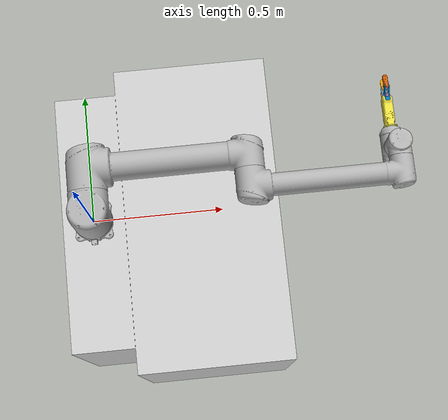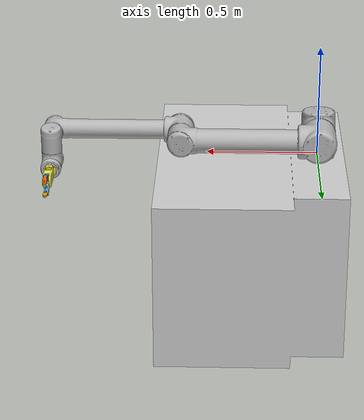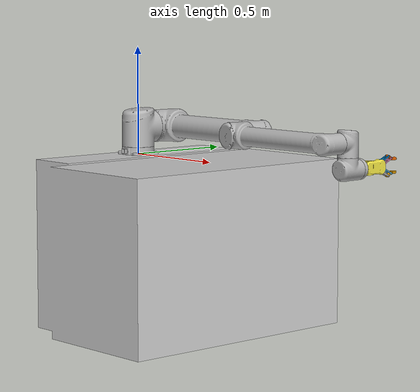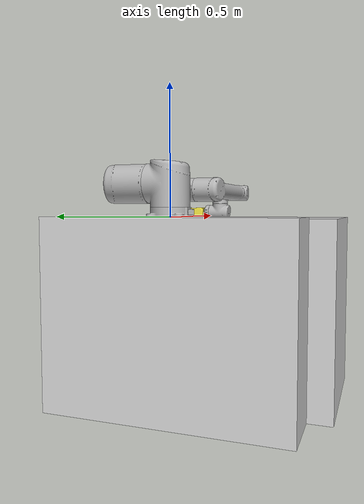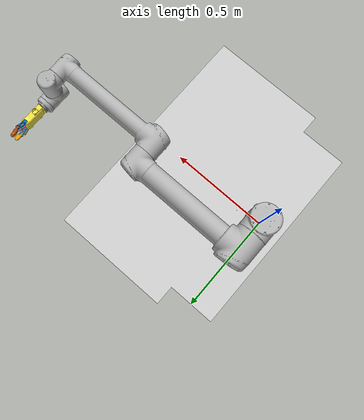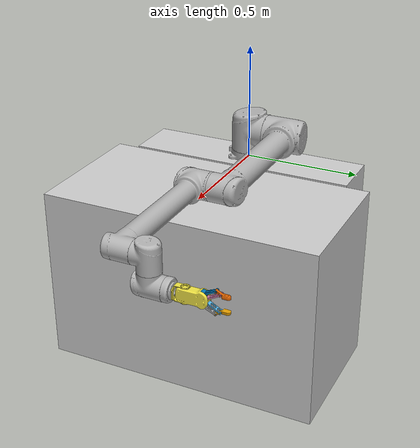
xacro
<?xml version="1.0"?>
<robot xmlns:xacro="http://wiki.ros.org/xacro" name="rg2myur10">
    <link name="world"/>
    <joint name ="world_link" type="fixed">
      <parent link="world"/>
      <child link="table"/>
      <origin xyz="0.42 0.0 -0.39" rpy="0.0 0.0 0.0"/>
    </joint>
      <material name="grey">
    <color rgba="0.8 0.8 0.8 1"/>
  </material>

  <link name="table">
    <visual>
      <geometry>
        <mesh filename="package://myur10_description/meshes/table/visual/table.dae"/>
      </geometry>
      <material name="grey"/>
    </visual>
    <collision>
      <geometry>
        <mesh filename="package://myur10_description/meshes/table/collision/table.obj"/>
      </geometry>
    </collision>
  </link>
    <xacro:arg name = "transmission_hw_interface" default = "hardware_interface/PositionJointInterface"/>

    <xacro:include filename = "$(find ur_description)/urdf/common.gazebo.xacro"/>

    <xacro:include filename = "$(find ur_description)/urdf/ur10.urdf.xacro"/>

    <xacro:include filename = "$(find rg2_description)/urdf/rg2.urdf.xacro"/>

    <xacro:ur10_robot prefix="" joint_limited="true" transmission_hw_interface= "$(arg transmission_hw_interface)"/>

    <joint name="ee_rg2_fixed_joint" type="fixed">
      <parent link="tool0"/>
        <child link="rg2_base_link"/>
      <origin xyz="0 0 0.004" rpy="${pi} ${-pi/2.0} 0"/>
    </joint>
    <link name="gripper_mid"/>
    <joint name="gripper_mid_joint" type="fixed">
      <parent link="tool0"/>
        <child link="gripper_mid"/>
      <origin xyz="0 0 0.2" rpy="0 0 0"/>
    </joint>
    <xacro:arg name="use_nominal_extrinsics" default="false" />
    <joint name="base_joint" type="fixed">
      <parent link="world"/>
      <child link="base_link"/>
      <origin xyz ="0.0 0 0.0" rpy="0.0 0.0 0.0"/>
    </joint>
</robot>

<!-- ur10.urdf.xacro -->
<robot xmlns:xacro="http://wiki.ros.org/xacro">

<!--
  Author: Kelsey Hawkins
  Contributers: Jimmy Da Silva, Ajit Krisshna N L, Muhammad Asif Rana
-->

  <xacro:include filename="$(find ur_description)/urdf/ur.transmission.xacro" />
  <xacro:include filename="$(find ur_description)/urdf/ur.gazebo.xacro" />

  <xacro:macro name="cylinder_inertial" params="radius length mass *origin">
    <inertial>
      <mass value="${mass}" />
      <xacro:insert_block name="origin" />
      <inertia ixx="${0.0833333 * mass * (3 * radius * radius + length * length)}" ixy="0.0" ixz="0.0"
        iyy="${0.0833333 * mass * (3 * radius * radius + length * length)}" iyz="0.0"
        izz="${0.5 * mass * radius * radius}" />
    </inertial>
  </xacro:macro>

  <xacro:macro name="ur10_robot" params="prefix joint_limited
    shoulder_pan_lower_limit:=${-pi}    shoulder_pan_upper_limit:=${pi}
    shoulder_lift_lower_limit:=${-pi}    shoulder_lift_upper_limit:=${pi}
    elbow_joint_lower_limit:=${-pi}    elbow_joint_upper_limit:=${pi}
    wrist_1_lower_limit:=${-pi}    wrist_1_upper_limit:=${pi}
    wrist_2_lower_limit:=${-pi}    wrist_2_upper_limit:=${pi}
    wrist_3_lower_limit:=${-pi}    wrist_3_upper_limit:=${pi}
    transmission_hw_interface:=hardware_interface/PositionJointInterface
    safety_limits:=false safety_pos_margin:=0.15
    safety_k_position:=20">

    <!-- Inertia parameters -->
    <xacro:property name="base_mass" value="4.0" />  <!-- This mass might be incorrect -->
    <xacro:property name="shoulder_mass" value="7.778" />
    <xacro:property name="upper_arm_mass" value="12.93" />
    <xacro:property name="forearm_mass" value="3.87" />
    <xacro:property name="wrist_1_mass" value="1.96" />
    <xacro:property name="wrist_2_mass" value="1.96" />
    <xacro:property name="wrist_3_mass" value="0.202" />

    <xacro:property name="shoulder_cog" value="0.00008 0.00244 -0.037" />
    <xacro:property name="upper_arm_cog" value="0.00001 0.15061 0.38757" />
    <xacro:property name="forearm_cog" value="-0.00012 0.06112 0.1984" />
    <xacro:property name="wrist_1_cog" value="-0.00021 -0.00112 0.02269" />
    <xacro:property name="wrist_2_cog" value="-0.00021 0.00112 0.002269" />
    <xacro:property name="wrist_3_cog" value="0 -0.001156 -0.00149" />

    <!-- Kinematic model -->
    <!-- Properties from urcontrol.conf -->
    <xacro:property name="d1" value="0.1273" />
    <xacro:property name="a2" value="-0.612" />
    <xacro:property name="a3" value="-0.5723" />
    <xacro:property name="d4" value="0.163941" />
    <xacro:property name="d5" value="0.1157" />
    <xacro:property name="d6" value="0.0922" />

    <!-- Arbitrary offsets for shoulder/elbow joints -->
    <xacro:property name="shoulder_offset" value="0.220941" />  <!-- measured from model -->
    <xacro:property name="elbow_offset" value="-0.1719" /> <!-- measured from model -->
    <xacro:property name="upper_arm_inertia_offset" value="0.045" />  <!-- measured from model -->

    <!-- link lengths used in model -->
    <xacro:property name="shoulder_height" value="${d1}" />
    <xacro:property name="upper_arm_length" value="${-a2}" />
    <xacro:property name="forearm_length" value="${-a3}" />
    <xacro:property name="wrist_1_length" value="${d4 - elbow_offset - shoulder_offset}" />
    <xacro:property name="wrist_2_length" value="${d5}" />
    <xacro:property name="wrist_3_length" value="${d6}" />

    <link name="${prefix}base_link" >
      <visual>
        <geometry>
          <mesh filename="package://ur_description/meshes/ur10/visual/base.dae"/>
        </geometry>
        <material name="LightGrey">
          <color rgba="0.7 0.7 0.7 1.0"/>
        </material>
      </visual>
      <collision>
        <geometry>
          <mesh filename="package://ur_description/meshes/ur10/collision/base.stl"/>
        </geometry>
      </collision>
      <xacro:cylinder_inertial radius="0.075" length="0.038" mass="${base_mass}">
        <origin xyz="0.0 0.0 0.0" rpy="0 0 0" />
      </xacro:cylinder_inertial>
    </link>

    <joint name="${prefix}shoulder_pan_joint" type="revolute">
      <parent link="${prefix}base_link" />
      <child link = "${prefix}shoulder_link" />
      <origin xyz="0.0 0.0 ${shoulder_height}" rpy="0.0 0.0 0.0" />
      <axis xyz="0 0 1" />
      <xacro:unless value="${joint_limited}">
        <limit lower="${-2.0 * pi}" upper="${2.0 * pi}" effort="330.0" velocity="2.16"/>
        <xacro:if value="${safety_limits}">
          <safety_controller soft_lower_limit="${-2.0 * pi + safety_pos_margin}" soft_upper_limit="${2.0 * pi - safety_pos_margin}" k_position="${safety_k_position}" k_velocity="0.0"/>
        </xacro:if>
      </xacro:unless>
      <xacro:if value="${joint_limited}">
        <limit lower="${shoulder_pan_lower_limit}" upper="${shoulder_pan_upper_limit}" effort="330.0" velocity="2.16"/>
        <xacro:if value="${safety_limits}">
          <safety_controller soft_lower_limit="${shoulder_pan_lower_limit + safety_pos_margin}" soft_upper_limit="${shoulder_pan_upper_limit - safety_pos_margin}" k_position="${safety_k_position}" k_velocity="0.0"/>
        </xacro:if>
      </xacro:if>
      <dynamics damping="0.0" friction="0.0"/>
    </joint>

    <link name="${prefix}shoulder_link">
      <visual>
        <geometry>
          <mesh filename="package://ur_description/meshes/ur10/visual/shoulder.dae"/>
        </geometry>
        <material name="LightGrey">
          <color rgba="0.7 0.7 0.7 1.0"/>
        </material>
      </visual>
      <collision>
        <geometry>
          <mesh filename="package://ur_description/meshes/ur10/collision/shoulder.stl"/>
        </geometry>
      </collision>
      <xacro:cylinder_inertial radius="0.075" length="0.178" mass="${shoulder_mass}">
        <origin xyz="0.0 0.0 0.0" rpy="0 0 0" />
      </xacro:cylinder_inertial>
    </link>

    <joint name="${prefix}shoulder_lift_joint" type="revolute">
      <parent link="${prefix}shoulder_link" />
      <child link = "${prefix}upper_arm_link" />
      <origin xyz="0.0 ${shoulder_offset} 0.0" rpy="0.0 ${pi / 2.0} 0.0" />
      <axis xyz="0 1 0" />
      <xacro:unless value="${joint_limited}">
        <limit lower="${-2.0 * pi}" upper="${2.0 * pi}" effort="330.0" velocity="2.16"/>
        <xacro:if value="${safety_limits}">
          <safety_controller soft_lower_limit="${-2.0 * pi + safety_pos_margin}" soft_upper_limit="${2.0 * pi - safety_pos_margin}" k_position="${safety_k_position}" k_velocity="0.0"/>
        </xacro:if>
      </xacro:unless>
      <xacro:if value="${joint_limited}">
        <limit lower="${shoulder_lift_lower_limit}" upper="${shoulder_lift_upper_limit}" effort="330.0" velocity="2.16"/>
        <xacro:if value="${safety_limits}">
          <safety_controller soft_lower_limit="${shoulder_lift_lower_limit + safety_pos_margin}" soft_upper_limit="${shoulder_lift_upper_limit - safety_pos_margin}" k_position="${safety_k_position}" k_velocity="0.0"/>
        </xacro:if>
      </xacro:if>
      <dynamics damping="0.0" friction="0.0"/>
    </joint>

    <link name="${prefix}upper_arm_link">
      <visual>
        <geometry>
          <mesh filename="package://ur_description/meshes/ur10/visual/upperarm.dae"/>
        </geometry>
        <material name="LightGrey">
          <color rgba="0.7 0.7 0.7 1.0"/>
        </material>
      </visual>
      <collision>
        <geometry>
          <mesh filename="package://ur_description/meshes/ur10/collision/upperarm.stl"/>
        </geometry>
      </collision>
      <xacro:cylinder_inertial radius="0.075" length="${-a2}" mass="${upper_arm_mass}">
        <origin xyz="0.0 ${-upper_arm_inertia_offset} ${-a2/2.0}" rpy="0 0 0" />
      </xacro:cylinder_inertial>
    </link>

    <joint name="${prefix}elbow_joint" type="revolute">
      <parent link="${prefix}upper_arm_link" />
      <child link = "${prefix}forearm_link" />
      <origin xyz="0.0 ${elbow_offset} ${upper_arm_length}" rpy="0.0 0.0 0.0" />
      <axis xyz="0 1 0" />
      <xacro:unless value="${joint_limited}">
        <limit lower="${-pi}" upper="${pi}" effort="150.0" velocity="3.15"/>
        <xacro:if value="${safety_limits}">
          <safety_controller soft_lower_limit="${-2.0 * pi + safety_pos_margin}" soft_upper_limit="${2.0 * pi - safety_pos_margin}" k_position="${safety_k_position}" k_velocity="0.0"/>
        </xacro:if>
      </xacro:unless>
      <xacro:if value="${joint_limited}">
        <limit lower="${elbow_joint_lower_limit}" upper="${elbow_joint_upper_limit}" effort="150.0" velocity="3.15"/>
        <xacro:if value="${safety_limits}">
          <safety_controller soft_lower_limit="${elbow_joint_lower_limit + safety_pos_margin}" soft_upper_limit="${elbow_joint_upper_limit - safety_pos_margin}" k_position="${safety_k_position}" k_velocity="0.0"/>
        </xacro:if>
      </xacro:if>
      <dynamics damping="0.0" friction="0.0"/>
    </joint>

    <link name="${prefix}forearm_link">
      <visual>
         <geometry>
          <mesh filename="package://ur_description/meshes/ur10/visual/forearm.dae"/>
        </geometry>
        <material name="LightGrey">
          <color rgba="0.7 0.7 0.7 1.0"/>
        </material>
      </visual>
      <collision>
        <geometry>
          <mesh filename="package://ur_description/meshes/ur10/collision/forearm.stl"/>
        </geometry>
      </collision>
      <xacro:cylinder_inertial radius="0.075" length="${-a3}" mass="${forearm_mass}">
        <origin xyz="0.0 0.0 ${-a3/2.0}" rpy="0 0 0" />
      </xacro:cylinder_inertial>
    </link>

    <joint name="${prefix}wrist_1_joint" type="revolute">
      <parent link="${prefix}forearm_link" />
      <child link = "${prefix}wrist_1_link" />
      <origin xyz="0.0 0.0 ${forearm_length}" rpy="0.0 ${pi / 2.0} 0.0" />
      <axis xyz="0 1 0" />
      <xacro:unless value="${joint_limited}">
        <limit lower="${-2.0 * pi}" upper="${2.0 * pi}" effort="54.0" velocity="3.2"/>
        <xacro:if value="${safety_limits}">
          <safety_controller soft_lower_limit="${-2.0 * pi + safety_pos_margin}" soft_upper_limit="${2.0 * pi - safety_pos_margin}" k_position="${safety_k_position}" k_velocity="0.0"/>
        </xacro:if>
      </xacro:unless>
      <xacro:if value="${joint_limited}">
        <limit lower="${wrist_1_lower_limit}" upper="${wrist_1_upper_limit}" effort="54.0" velocity="3.2"/>
        <xacro:if value="${safety_limits}">
          <safety_controller soft_lower_limit="${wrist_1_lower_limit + safety_pos_margin}" soft_upper_limit="${wrist_1_upper_limit - safety_pos_margin}" k_position="${safety_k_position}" k_velocity="0.0"/>
        </xacro:if>
      </xacro:if>
      <dynamics damping="0.0" friction="0.0"/>
    </joint>

    <link name="${prefix}wrist_1_link">
      <visual>
        <geometry>
          <mesh filename="package://ur_description/meshes/ur10/visual/wrist1.dae"/>
        </geometry>
        <material name="LightGrey">
          <color rgba="0.7 0.7 0.7 1.0"/>
        </material>
      </visual>
      <collision>
        <geometry>
          <mesh filename="package://ur_description/meshes/ur10/collision/wrist1.stl"/>
        </geometry>
      </collision>
      <xacro:cylinder_inertial radius="0.075" length="0.12" mass="${wrist_1_mass}">
        <origin xyz="0.0 ${wrist_1_length} 0.0" rpy="0 0 0" />
      </xacro:cylinder_inertial>
    </link>

    <joint name="${prefix}wrist_2_joint" type="revolute">
      <parent link="${prefix}wrist_1_link" />
      <child link = "${prefix}wrist_2_link" />
      <origin xyz="0.0 ${wrist_1_length} 0.0" rpy="0.0 0.0 0.0" />
      <axis xyz="0 0 1" />
      <xacro:unless value="${joint_limited}">
        <limit lower="${-2.0 * pi}" upper="${2.0 * pi}" effort="54.0" velocity="3.2"/>
        <xacro:if value="${safety_limits}">
          <safety_controller soft_lower_limit="${-2.0 * pi + safety_pos_margin}" soft_upper_limit="${2.0 * pi - safety_pos_margin}" k_position="${safety_k_position}" k_velocity="0.0"/>
        </xacro:if>
      </xacro:unless>
      <xacro:if value="${joint_limited}">
        <limit lower="${wrist_2_lower_limit}" upper="${wrist_2_upper_limit}" effort="54.0" velocity="3.2"/>
        <xacro:if value="${safety_limits}">
          <safety_controller soft_lower_limit="${wrist_2_lower_limit + safety_pos_margin}" soft_upper_limit="${wrist_2_upper_limit - safety_pos_margin}" k_position="${safety_k_position}" k_velocity="0.0"/>
        </xacro:if>
      </xacro:if>
      <dynamics damping="0.0" friction="0.0"/>
    </joint>

    <link name="${prefix}wrist_2_link">
      <visual>
        <geometry>
          <mesh filename="package://ur_description/meshes/ur10/visual/wrist2.dae"/>
        </geometry>
        <material name="LightGrey">
          <color rgba="0.7 0.7 0.7 1.0"/>
        </material>
      </visual>
      <collision>
        <geometry>
          <mesh filename="package://ur_description/meshes/ur10/collision/wrist2.stl"/>
        </geometry>
      </collision>
      <xacro:cylinder_inertial radius="0.075" length="0.12" mass="${wrist_2_mass}">
        <origin xyz="0.0 0.0 ${wrist_2_length}" rpy="0 0 0" />
      </xacro:cylinder_inertial>
    </link>

    <joint name="${prefix}wrist_3_joint" type="revolute">
      <parent link="${prefix}wrist_2_link" />
      <child link = "${prefix}wrist_3_link" />
      <origin xyz="0.0 0.0 ${wrist_2_length}" rpy="0.0 1.5707 0.0" />
      <axis xyz="0 1 0" />
      <xacro:unless value="${joint_limited}">
        <limit lower="${-2.0 * pi}" upper="${2.0 * pi}" effort="54.0" velocity="3.2"/>
        <xacro:if value="${safety_limits}">
          <safety_controller soft_lower_limit="${-2.0 * pi + safety_pos_margin}" soft_upper_limit="${2.0 * pi - safety_pos_margin}" k_position="${safety_k_position}" k_velocity="0.0"/>
        </xacro:if>
      </xacro:unless>
      <xacro:if value="${joint_limited}">
        <limit lower="${wrist_3_lower_limit}" upper="${wrist_3_upper_limit}" effort="54.0" velocity="3.2"/>
        <xacro:if value="${safety_limits}">
          <safety_controller soft_lower_limit="${wrist_3_lower_limit + safety_pos_margin}" soft_upper_limit="${wrist_3_upper_limit - safety_pos_margin}" k_position="${safety_k_position}" k_velocity="0.0"/>
        </xacro:if>
      </xacro:if>
      <dynamics damping="0.0" friction="0.0"/>
    </joint>

    <link name="${prefix}wrist_3_link">
      <visual>
        <geometry>
          <mesh filename="package://ur_description/meshes/ur10/visual/wrist3.dae"/>
        </geometry>
        <material name="LightGrey">
          <color rgba="0.7 0.7 0.7 1.0"/>
        </material>
      </visual>
      <collision>
        <geometry>
          <mesh filename="package://ur_description/meshes/ur10/collision/wrist3.stl"/>
        </geometry>
      </collision>
      <xacro:cylinder_inertial radius="0.045" length="0.0305" mass="${wrist_3_mass}">
        <origin xyz="0.0 ${wrist_3_length - 0.0305/2} 0.0" rpy="${pi/2} 0 0" />
      </xacro:cylinder_inertial>
    </link>

    <joint name="${prefix}ee_fixed_joint" type="fixed">
      <parent link="${prefix}wrist_3_link" />
      <child link = "${prefix}ee_link" />
      <origin xyz="0.0 ${wrist_3_length} 0.0" rpy="0.0 0.0 ${pi/2.0}" />
    </joint>

    <link name="${prefix}ee_link">
      <collision>
        <geometry>
          <box size="0.01 0.01 0.01"/>
        </geometry>
        <origin rpy="0 0 0" xyz="-0.01 0 0"/>
      </collision>
    </link>

    <xacro:ur_arm_transmission prefix="${prefix}" hw_interface="${transmission_hw_interface}" />
    <xacro:ur_arm_gazebo prefix="${prefix}" />

    <!-- ROS base_link to UR 'Base' Coordinates transform -->
    <link name="${prefix}base"/>
    <joint name="${prefix}base_link-base_fixed_joint" type="fixed">
      <!-- NOTE: this rotation is only needed as long as base_link itself is
                 not corrected wrt the real robot (ie: rotated over 180
                 degrees)
      -->
      <origin xyz="0 0 0" rpy="0 0 ${-pi}"/>
      <parent link="${prefix}base_link"/>
      <child link="${prefix}base"/>
    </joint>

    <!-- Frame coincident with all-zeros TCP on UR controller -->
    <link name="${prefix}tool0"/>
    <joint name="${prefix}wrist_3_link-tool0_fixed_joint" type="fixed">
      <origin xyz="0 ${wrist_3_length} 0" rpy="${pi/-2.0} ${pi/2.0} 0"/>
      <parent link="${prefix}wrist_3_link"/>
      <child link="${prefix}tool0"/>
    </joint>

  </xacro:macro>
</robot>

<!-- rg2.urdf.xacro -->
<robot name="rg2" xmlns:xacro="http://ros.org/wiki/xacro">

    <xacro:property name="pi" value="3.141592654" />
    <xacro:include filename="$(find rg2_description)/urdf/rg2.transmissions.xacro" />

    <link name="rg2_base_link">
    </link>
    <joint name="base_fixed_joint" type="fixed">
        <parent link="rg2_base_link"/>
        <child link="hand_link"/>
        <origin xyz="0.000 0.000 0.000" rpy="0 0 0"/>
    </joint>
    <link name="hand_link">
        <collision>
            <origin xyz="0.00 0.00 0.00" rpy="0.00 0.00 0.00"/>
            <geometry>
                <mesh filename="package://rg2_description/meshes/collision/RG2_Hand_col.STL"/>
            </geometry>
        </collision>
        <visual>
            <origin xyz="0.00 0.00 0.00" rpy="0.00 0.00 0.00"/>
            <geometry>
                <mesh filename="package://rg2_description/meshes/visual/RG2_Hand_vis.STL"/>
            </geometry>
        </visual>
        <inertial>
            <origin xyz="0.061902 0.000129 -0.000005" rpy="0.00 0.00 0.00"/>
            <mass value="1.684558"/>
            <inertia ixx="0.000862" ixy="0.000000" ixz="0.000000"
                     iyy="0.002401" iyz="-0.000001"
                     izz="0.002620" />
        </inertial>
    </link>
    <!-- Jari Kiri -->
    <joint name="gripper_joint" type="revolute">
        <parent link="hand_link"/>
        <child link="l_moment_arm_link"/>
        <origin xyz="0.105 0.017 0.010" rpy="0 0 0"/>
        <axis xyz="0 0 1"/>
        <limit velocity="3.14" effort="10.6" lower="${-0.45}" upper="${pi*0.5}" />
        <dynamics damping="0.1" friction="0.0" />
        <implicitSpringDamper>True</implicitSpringDamper>
    </joint>
    <xacro:insert_transmission name="gripper_joint" />
    <link name="l_moment_arm_link">
        <collision>
            <origin xyz="0.00 0.00 0.00" rpy="0.00 0.00 0.00"/>
            <geometry>
                <mesh filename="package://rg2_description/meshes/collision/RG2_LeftMomentArm_col.STL"/>
            </geometry>
        </collision>
        <visual>
            <origin xyz="0.00 0.00 0.00" rpy="0.00 0.00 0.00"/>
            <geometry>
                <mesh filename="package://rg2_description/meshes/visual/RG2_LeftMomentArm_vis.STL"/>
            </geometry>
        </visual>
        <inertial>
            <origin xyz="0.017004 0.006397 -0.010300" rpy="0.00 0.00 0.00"/>
            <mass value="0.160209"/>
            <inertia ixx="0.000023" ixy="0.000019" ixz="0.000000"
                     iyy="0.000072" iyz="0.000000"
                     izz="0.000083" />
        </inertial>
    </link>
    <joint name="l_finger_2_joint" type="revolute">
        <parent link="l_moment_arm_link"/>
        <child link="l_finger_link"/>
        <origin xyz="0.049 0.026 0.000" rpy="0 0 0"/>
        <axis xyz="0 0 1"/>
        <limit velocity="3.14" effort="10.6" lower="${-pi*0.5}" upper="${pi*0.5}" />
        <mimic joint="gripper_joint" multiplier="-1"/>
        <dynamics damping="0.1" friction="0.0" />
        <implicitSpringDamper>True</implicitSpringDamper>
    </joint>
    <link name="l_finger_link">
        <collision>
            <origin xyz="0.00 0.00 0.00" rpy="0.00 0.00 0.00"/>
            <geometry>
                <mesh filename="package://rg2_description/meshes/collision/RG2_LeftFinger_col.STL"/>
            </geometry>
        </collision>
        <visual>
            <origin xyz="0.00 0.00 0.00" rpy="0.00 0.00 0.00"/>
            <geometry>
                <mesh filename="package://rg2_description/meshes/visual/RG2_LeftFinger_vis.STL"/>
            </geometry>
        </visual>
        <inertial>
            <origin xyz="0.024695 -0.010178 -0.010001" rpy="0.00 0.00 0.00"/>
            <mass value="0.081638"/>
            <inertia ixx="0.000006" ixy="-0.000005" ixz="0.000000"
                     iyy="0.000025" iyz="0.000000"
                     izz="0.000026" />
        </inertial>
    </link>
    <joint name="l_finger_passive_joint" type="revolute">
        <parent link="hand_link"/>
        <child link="l_truss_arm_link"/>
        <origin xyz="0.122 0.008 0.010" rpy="0 0 0"/>
        <axis xyz="0 0 1"/>
        <limit velocity="3.14" effort="10.6" lower="${-pi*0.5}" upper="${pi*0.5}" />
        <mimic joint="gripper_joint" multiplier="1"/>
        <dynamics damping="0.1" friction="0.0" />
        <implicitSpringDamper>True</implicitSpringDamper>
    </joint>
    <link name="l_truss_arm_link">
        <collision>
            <origin xyz="0.00 0.00 0.00" rpy="0.00 0.00 0.00"/>
            <geometry>
                <mesh filename="package://rg2_description/meshes/collision/RG2_LeftTrussArm_col.STL"/>
            </geometry>
        </collision>
        <visual>
            <origin xyz="0.00 0.00 0.00" rpy="0.00 0.00 0.00"/>
            <geometry>
                <mesh filename="package://rg2_description/meshes/visual/RG2_LeftTrussArm_vis.STL"/>
            </geometry>
        </visual>
        <inertial>
            <origin xyz="0.023075 0.012136 -0.010000" rpy="0.00 0.00 0.00"/>
            <mass value="0.065927"/>
            <inertia ixx="0.000010" ixy="0.000010" ixz="0.000000"
                     iyy="0.000024" iyz="0.000000"
                     izz="0.000025" />
        </inertial>
    </link>
    <!-- Jari Kanan -->
    <joint name="r_finger_1_joint" type="revolute">
        <parent link="hand_link"/>
        <child link="r_moment_arm_link"/>
        <origin xyz="0.105 -0.017 0.010" rpy="0 0 0"/>
        <axis xyz="0 0 1"/>
        <limit velocity="3.14" effort="10.6" lower="${-pi*0.5}" upper="${pi*0.5}" />
        <mimic joint="gripper_joint" multiplier="-1"/>
        <dynamics damping="0.1" friction="0.0" />
        <implicitSpringDamper>True</implicitSpringDamper>
    </joint>
    <link name="r_moment_arm_link">
        <collision>
            <origin xyz="0.00 0.00 0.00" rpy="0.00 0.00 0.00"/>
            <geometry>
                <mesh filename="package://rg2_description/meshes/collision/RG2_RightMomentArm_col.STL"/>
            </geometry>
        </collision>
        <visual>
            <origin xyz="0.00 0.00 0.00" rpy="0.00 0.00 0.00"/>
            <geometry>
                <mesh filename="package://rg2_description/meshes/visual/RG2_RightMomentArm_vis.STL"/>
            </geometry>
        </visual>
        <inertial>
            <origin xyz="0.017004 -0.006397 -0.010300" rpy="0.00 0.00 0.00"/>
            <mass value="0.160209"/>
            <inertia ixx="0.000023" ixy="-0.000019" ixz="0.000000"
                     iyy="0.000072" iyz="0.000000"
                     izz="0.000083" />
        </inertial>
    </link>
    <joint name="r_finger_2_joint" type="revolute">
        <parent link="r_moment_arm_link"/>
        <child link="r_finger_link"/>
        <origin xyz="0.049 -0.026 0.000" rpy="0 0 0"/>
        <axis xyz="0 0 1"/>
        <limit velocity="3.14" effort="10.6" lower="${-pi*0.5}" upper="${pi*0.5}" />
        <mimic joint="gripper_joint" multiplier="1"/>
        <dynamics damping="0.1" friction="0.0" />
        <implicitSpringDamper>True</implicitSpringDamper>
    </joint>
    <link name="r_finger_link">
        <collision>
            <origin xyz="0.00 0.00 0.00" rpy="0.00 0.00 0.00"/>
            <geometry>
                <mesh filename="package://rg2_description/meshes/collision/RG2_RightFinger_col.STL"/>
            </geometry>
        </collision>
        <visual>
            <origin xyz="0.00 0.00 0.00" rpy="0.00 0.00 0.00"/>
            <geometry>
                <mesh filename="package://rg2_description/meshes/visual/RG2_RightFinger_vis.STL"/>
            </geometry>
        </visual>
        <inertial>
            <origin xyz="0.024695 0.010178 -0.010000" rpy="0.00 0.00 0.00"/>
            <mass value="0.081637"/>
            <inertia ixx="0.000006" ixy="0.000005" ixz="0.000000"
                     iyy="0.000025" iyz="0.000000"
                     izz="0.000026" />
        </inertial>
    </link>
    <joint name="r_finger_passive_joint" type="revolute">
        <parent link="hand_link"/>
        <child link="r_truss_arm_link"/>
        <origin xyz="0.122 -0.008 0.010" rpy="0 0 0"/>
        <axis xyz="0 0 1"/>
        <limit velocity="3.14" effort="10.6" lower="${-pi*0.5}" upper="${pi*0.5}" />
        <mimic joint="gripper_joint" multiplier="-1"/>
        <dynamics damping="0.1" friction="0.0" />
        <implicitSpringDamper>True</implicitSpringDamper>
    </joint>
    <link name="r_truss_arm_link">
        <collision>
            <origin xyz="0.00 0.00 0.00" rpy="0.00 0.00 0.00"/>
            <geometry>
                <mesh filename="package://rg2_description/meshes/collision/RG2_RightTrussArm_col.STL"/>
            </geometry>
        </collision>
        <visual>
            <origin xyz="0.00 0.00 0.00" rpy="0.00 0.00 0.00"/>
            <geometry>
                <mesh filename="package://rg2_description/meshes/visual/RG2_RightTrussArm_vis.STL"/>
            </geometry>
        </visual>
        <inertial>
            <origin xyz="0.023075 -0.012136 -0.010000" rpy="0.00 0.00 0.00"/>
            <mass value="0.065927"/>
            <inertia ixx="0.000010" ixy="-0.000010" ixz="0.000000"
                     iyy="0.000024" iyz="0.000000"
                     izz="0.000025" />
        </inertial>
    </link>
</robot>
